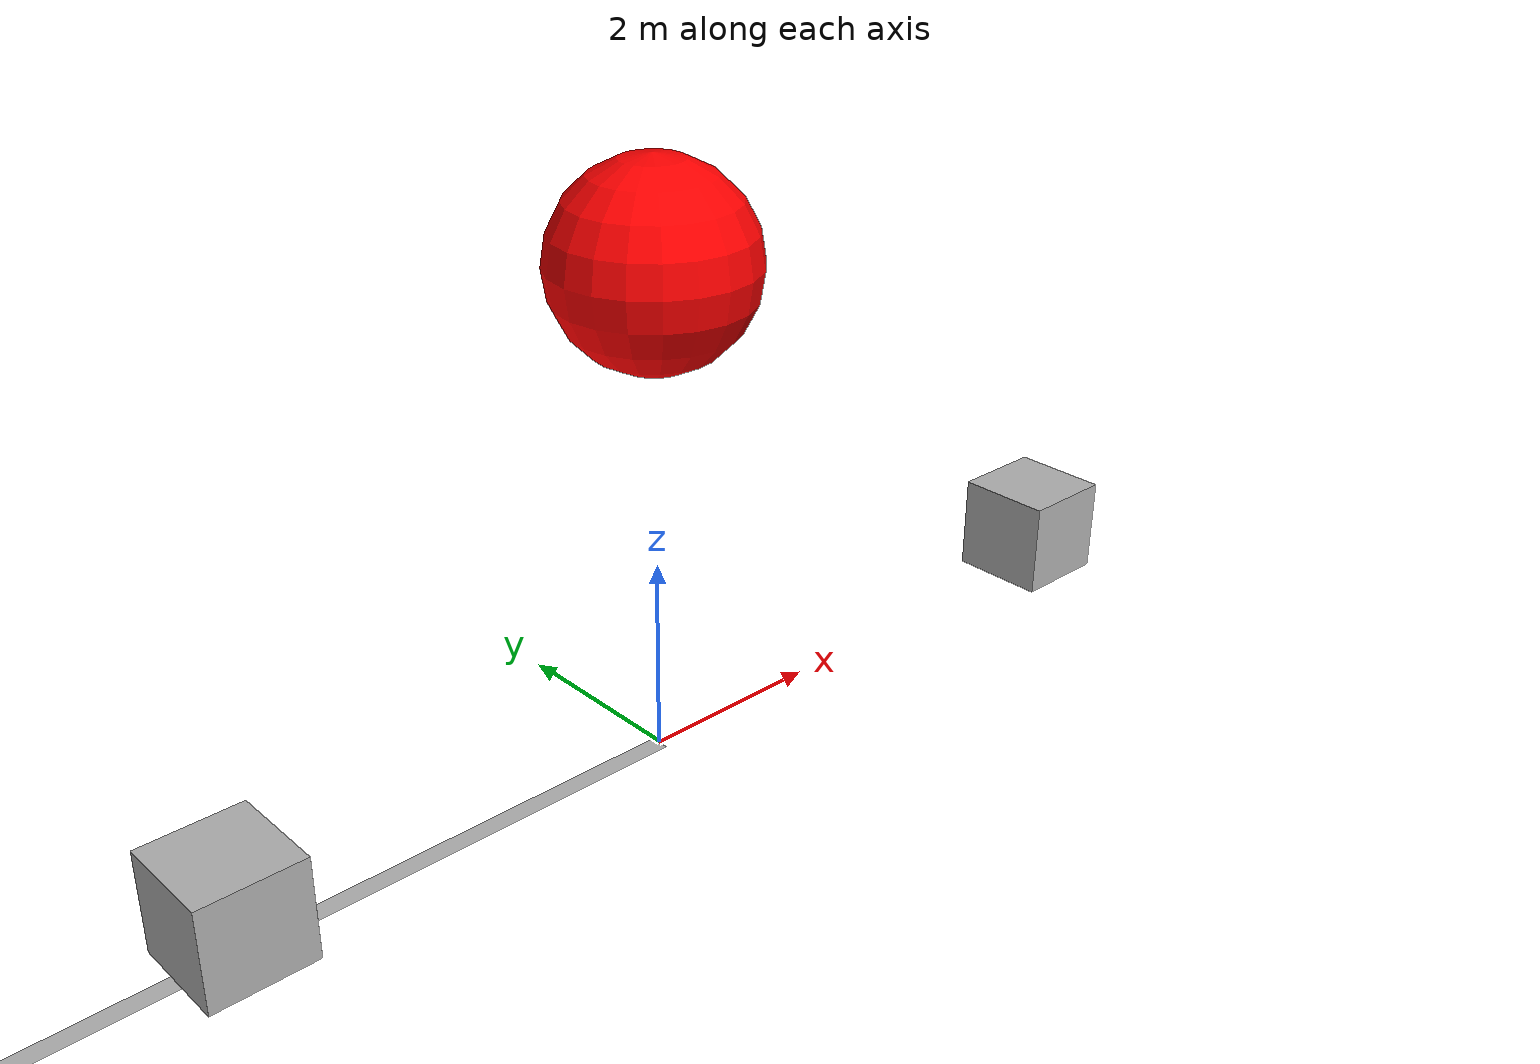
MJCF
<mujoco>
  <option gravity="0 0 -9.81" />
  <worldbody>
    <body name="object_3" pos="-5 0 0">
      <geom type="plane" size="5 0.1 10" rgba="0.7 0.7 0.7 1" friction="0.2 0.2 0.2" />
    </body>
    <body name="object_4" pos="5 0 0">
      <geom type="plane" size="5 0.1 10" rgba="0.7 0.7 0.7 1" friction="0.2 0.2 0.2" />
    </body>
    <body name="object_5" pos="0 0 -10">
      <geom type="plane" size="30 30 0.1" rgba="0.7 0.7 0.7 1" friction="1 1 1" />
    </body>
    <body name="object_1" pos="-5 -0.6 1">
      <geom type="box" size="0.5 0.5 0.5" density="1" rgba="0.7 0.7 0.7 1" />
    </body>
    <body name="object_2" pos="5 -0.6 1">
      <geom type="box" size="0.5 0.5 0.5" density="1" rgba="0.7 0.7 0.7 1" />
    </body>
  <body name="test_block" pos="0.0 0.0 5.0"><geom type="sphere" size="1.0" rgba="1.0 0.0 0.0 1.0" /></body></worldbody>
</mujoco>
